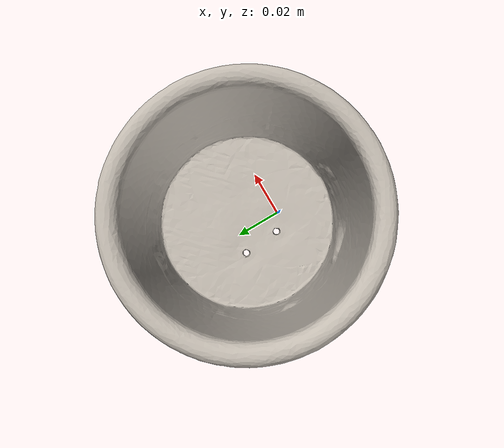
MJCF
<mujoco model="cups_h">
  <compiler angle="radian" meshdir="assets" texturedir="assets"/>
    <default>
        <default class="ycb_col">
            <geom contype="1" conaffinity="1" group="3" rgba=".4 .5 .6 1"/>
        </default>
        <default class="ycb_viz">
            <geom contype="0" conaffinity="0" type="mesh" mass="0"/>
        </default>
    </default>
  <asset>
    <texture type="2d" name="h_cups_tex" file="texture_map.png"/>
    <material name="h_cups_mat" texture="h_cups_tex" specular="0.5" shininess="0.5"/>
    <mesh file="textured.obj" name="h_cups"/>
    <mesh file="textured_collision_0.obj" name="h_cups_collision_0"/>
    <mesh file="textured_collision_1.obj" name="h_cups_collision_1"/>
    <mesh file="textured_collision_2.obj" name="h_cups_collision_2"/>
    <mesh file="textured_collision_3.obj" name="h_cups_collision_3"/>
    <mesh file="textured_collision_4.obj" name="h_cups_collision_4"/>
    <mesh file="textured_collision_5.obj" name="h_cups_collision_5"/>
    <mesh file="textured_collision_6.obj" name="h_cups_collision_6"/>
    <mesh file="textured_collision_7.obj" name="h_cups_collision_7"/>
    <mesh file="textured_collision_8.obj" name="h_cups_collision_8"/>
    <mesh file="textured_collision_9.obj" name="h_cups_collision_9"/>
    <mesh file="textured_collision_10.obj" name="h_cups_collision_10"/>
    <mesh file="textured_collision_11.obj" name="h_cups_collision_11"/>
    <mesh file="textured_collision_12.obj" name="h_cups_collision_12"/>
    <mesh file="textured_collision_13.obj" name="h_cups_collision_13"/>
    <mesh file="textured_collision_14.obj" name="h_cups_collision_14"/>
    <mesh file="textured_collision_15.obj" name="h_cups_collision_15"/>
    <mesh file="textured_collision_16.obj" name="h_cups_collision_16"/>
    <mesh file="textured_collision_17.obj" name="h_cups_collision_17"/>
    <mesh file="textured_collision_18.obj" name="h_cups_collision_18"/>
    <mesh file="textured_collision_19.obj" name="h_cups_collision_19"/>
    <mesh file="textured_collision_20.obj" name="h_cups_collision_20"/>
    <mesh file="textured_collision_21.obj" name="h_cups_collision_21"/>
    <mesh file="textured_collision_22.obj" name="h_cups_collision_22"/>
    <mesh file="textured_collision_23.obj" name="h_cups_collision_23"/>
    <mesh file="textured_collision_24.obj" name="h_cups_collision_24"/>
    <mesh file="textured_collision_25.obj" name="h_cups_collision_25"/>
    <mesh file="textured_collision_26.obj" name="h_cups_collision_26"/>
    <mesh file="textured_collision_27.obj" name="h_cups_collision_27"/>
    <mesh file="textured_collision_28.obj" name="h_cups_collision_28"/>
    <mesh file="textured_collision_29.obj" name="h_cups_collision_29"/>
    <mesh file="textured_collision_30.obj" name="h_cups_collision_30"/>
    <mesh file="textured_collision_31.obj" name="h_cups_collision_31"/>
    <mesh file="textured_collision_32.obj" name="h_cups_collision_32"/>
    <mesh file="textured_collision_33.obj" name="h_cups_collision_33"/>
    <mesh file="textured_collision_34.obj" name="h_cups_collision_34"/>
    <mesh file="textured_collision_35.obj" name="h_cups_collision_35"/>
    <mesh file="textured_collision_36.obj" name="h_cups_collision_36"/>
    <mesh file="textured_collision_37.obj" name="h_cups_collision_37"/>
    <mesh file="textured_collision_38.obj" name="h_cups_collision_38"/>
    <mesh file="textured_collision_39.obj" name="h_cups_collision_39"/>
    <mesh file="textured_collision_40.obj" name="h_cups_collision_40"/>
    <mesh file="textured_collision_41.obj" name="h_cups_collision_41"/>
    <mesh file="textured_collision_42.obj" name="h_cups_collision_42"/>
  </asset>
  <worldbody>
      <geom material="h_cups_mat" mesh="h_cups" class="ycb_viz"/>
      <geom mesh="h_cups_collision_0" class="ycb_col" conaffinity="1" condim="4" friction="0.1 0.1 0.1" mass="0.00028280414980787677" rgba="1 1 1 1" solimp="0.99 0.99 0.01" solref=".001 0.1" type="mesh" group="3"/>
      <geom mesh="h_cups_collision_1" class="ycb_col" conaffinity="1" condim="4" friction="0.1 0.1 0.1" mass="0.001256637137418847" rgba="1 1 1 1" solimp="0.99 0.99 0.01" solref=".001 0.1" type="mesh" group="3"/>
      <geom mesh="h_cups_collision_2" class="ycb_col" conaffinity="1" condim="4" friction="0.1 0.1 0.1" mass="0.0015878626229933687" rgba="1 1 1 1" solimp="0.99 0.99 0.01" solref=".001 0.1" type="mesh" group="3"/>
      <geom mesh="h_cups_collision_3" class="ycb_col" conaffinity="1" condim="4" friction="0.1 0.1 0.1" mass="0.0005200632786200273" rgba="1 1 1 1" solimp="0.99 0.99 0.01" solref=".001 0.1" type="mesh" group="3"/>
      <geom mesh="h_cups_collision_4" class="ycb_col" conaffinity="1" condim="4" friction="0.1 0.1 0.1" mass="0.00040652916146694776" rgba="1 1 1 1" solimp="0.99 0.99 0.01" solref=".001 0.1" type="mesh" group="3"/>
      <geom mesh="h_cups_collision_5" class="ycb_col" conaffinity="1" condim="4" friction="0.1 0.1 0.1" mass="0.0005292658021794999" rgba="1 1 1 1" solimp="0.99 0.99 0.01" solref=".001 0.1" type="mesh" group="3"/>
      <geom mesh="h_cups_collision_6" class="ycb_col" conaffinity="1" condim="4" friction="0.1 0.1 0.1" mass="0.00035031770034384254" rgba="1 1 1 1" solimp="0.99 0.99 0.01" solref=".001 0.1" type="mesh" group="3"/>
      <geom mesh="h_cups_collision_7" class="ycb_col" conaffinity="1" condim="4" friction="0.1 0.1 0.1" mass="0.00014251351980353624" rgba="1 1 1 1" solimp="0.99 0.99 0.01" solref=".001 0.1" type="mesh" group="3"/>
      <geom mesh="h_cups_collision_8" class="ycb_col" conaffinity="1" condim="4" friction="0.1 0.1 0.1" mass="0.0001508180642788027" rgba="1 1 1 1" solimp="0.99 0.99 0.01" solref=".001 0.1" type="mesh" group="3"/>
      <geom mesh="h_cups_collision_9" class="ycb_col" conaffinity="1" condim="4" friction="0.1 0.1 0.1" mass="0.001194273559746922" rgba="1 1 1 1" solimp="0.99 0.99 0.01" solref=".001 0.1" type="mesh" group="3"/>
      <geom mesh="h_cups_collision_10" class="ycb_col" conaffinity="1" condim="4" friction="0.1 0.1 0.1" mass="0.0006473149555420929" rgba="1 1 1 1" solimp="0.99 0.99 0.01" solref=".001 0.1" type="mesh" group="3"/>
      <geom mesh="h_cups_collision_11" class="ycb_col" conaffinity="1" condim="4" friction="0.1 0.1 0.1" mass="0.0014315674051034932" rgba="1 1 1 1" solimp="0.99 0.99 0.01" solref=".001 0.1" type="mesh" group="3"/>
      <geom mesh="h_cups_collision_12" class="ycb_col" conaffinity="1" condim="4" friction="0.1 0.1 0.1" mass="0.0013033914960154476" rgba="1 1 1 1" solimp="0.99 0.99 0.01" solref=".001 0.1" type="mesh" group="3"/>
      <geom mesh="h_cups_collision_13" class="ycb_col" conaffinity="1" condim="4" friction="0.1 0.1 0.1" mass="0.000952547767445517" rgba="1 1 1 1" solimp="0.99 0.99 0.01" solref=".001 0.1" type="mesh" group="3"/>
      <geom mesh="h_cups_collision_14" class="ycb_col" conaffinity="1" condim="4" friction="0.1 0.1 0.1" mass="0.0004428585702471481" rgba="1 1 1 1" solimp="0.99 0.99 0.01" solref=".001 0.1" type="mesh" group="3"/>
      <geom mesh="h_cups_collision_15" class="ycb_col" conaffinity="1" condim="4" friction="0.1 0.1 0.1" mass="0.00016098441952162683" rgba="1 1 1 1" solimp="0.99 0.99 0.01" solref=".001 0.1" type="mesh" group="3"/>
      <geom mesh="h_cups_collision_16" class="ycb_col" conaffinity="1" condim="4" friction="0.1 0.1 0.1" mass="0.00017438439495229448" rgba="1 1 1 1" solimp="0.99 0.99 0.01" solref=".001 0.1" type="mesh" group="3"/>
      <geom mesh="h_cups_collision_17" class="ycb_col" conaffinity="1" condim="4" friction="0.1 0.1 0.1" mass="0.001013042683258586" rgba="1 1 1 1" solimp="0.99 0.99 0.01" solref=".001 0.1" type="mesh" group="3"/>
      <geom mesh="h_cups_collision_18" class="ycb_col" conaffinity="1" condim="4" friction="0.1 0.1 0.1" mass="0.0011445255138580219" rgba="1 1 1 1" solimp="0.99 0.99 0.01" solref=".001 0.1" type="mesh" group="3"/>
      <geom mesh="h_cups_collision_19" class="ycb_col" conaffinity="1" condim="4" friction="0.1 0.1 0.1" mass="0.0012008072319873453" rgba="1 1 1 1" solimp="0.99 0.99 0.01" solref=".001 0.1" type="mesh" group="3"/>
      <geom mesh="h_cups_collision_20" class="ycb_col" conaffinity="1" condim="4" friction="0.1 0.1 0.1" mass="0.00125005756312589" rgba="1 1 1 1" solimp="0.99 0.99 0.01" solref=".001 0.1" type="mesh" group="3"/>
      <geom mesh="h_cups_collision_21" class="ycb_col" conaffinity="1" condim="4" friction="0.1 0.1 0.1" mass="0.0002618029117409351" rgba="1 1 1 1" solimp="0.99 0.99 0.01" solref=".001 0.1" type="mesh" group="3"/>
      <geom mesh="h_cups_collision_22" class="ycb_col" conaffinity="1" condim="4" friction="0.1 0.1 0.1" mass="0.00027852686378564704" rgba="1 1 1 1" solimp="0.99 0.99 0.01" solref=".001 0.1" type="mesh" group="3"/>
      <geom mesh="h_cups_collision_23" class="ycb_col" conaffinity="1" condim="4" friction="0.1 0.1 0.1" mass="0.00039764844922289555" rgba="1 1 1 1" solimp="0.99 0.99 0.01" solref=".001 0.1" type="mesh" group="3"/>
      <geom mesh="h_cups_collision_24" class="ycb_col" conaffinity="1" condim="4" friction="0.1 0.1 0.1" mass="0.0012688922462091318" rgba="1 1 1 1" solimp="0.99 0.99 0.01" solref=".001 0.1" type="mesh" group="3"/>
      <geom mesh="h_cups_collision_25" class="ycb_col" conaffinity="1" condim="4" friction="0.1 0.1 0.1" mass="0.0012247821748068697" rgba="1 1 1 1" solimp="0.99 0.99 0.01" solref=".001 0.1" type="mesh" group="3"/>
      <geom mesh="h_cups_collision_26" class="ycb_col" conaffinity="1" condim="4" friction="0.1 0.1 0.1" mass="0.0016094419426833915" rgba="1 1 1 1" solimp="0.99 0.99 0.01" solref=".001 0.1" type="mesh" group="3"/>
      <geom mesh="h_cups_collision_27" class="ycb_col" conaffinity="1" condim="4" friction="0.1 0.1 0.1" mass="0.0012183233928398836" rgba="1 1 1 1" solimp="0.99 0.99 0.01" solref=".001 0.1" type="mesh" group="3"/>
      <geom mesh="h_cups_collision_28" class="ycb_col" conaffinity="1" condim="4" friction="0.1 0.1 0.1" mass="0.00022728617086448263" rgba="1 1 1 1" solimp="0.99 0.99 0.01" solref=".001 0.1" type="mesh" group="3"/>
      <geom mesh="h_cups_collision_29" class="ycb_col" conaffinity="1" condim="4" friction="0.1 0.1 0.1" mass="0.00020869322173122876" rgba="1 1 1 1" solimp="0.99 0.99 0.01" solref=".001 0.1" type="mesh" group="3"/>
      <geom mesh="h_cups_collision_30" class="ycb_col" conaffinity="1" condim="4" friction="0.1 0.1 0.1" mass="0.0012174961722372943" rgba="1 1 1 1" solimp="0.99 0.99 0.01" solref=".001 0.1" type="mesh" group="3"/>
      <geom mesh="h_cups_collision_31" class="ycb_col" conaffinity="1" condim="4" friction="0.1 0.1 0.1" mass="0.0012291201617513892" rgba="1 1 1 1" solimp="0.99 0.99 0.01" solref=".001 0.1" type="mesh" group="3"/>
      <geom mesh="h_cups_collision_32" class="ycb_col" conaffinity="1" condim="4" friction="0.1 0.1 0.1" mass="0.0011424804972887225" rgba="1 1 1 1" solimp="0.99 0.99 0.01" solref=".001 0.1" type="mesh" group="3"/>
      <geom mesh="h_cups_collision_33" class="ycb_col" conaffinity="1" condim="4" friction="0.1 0.1 0.1" mass="0.0014208331775228016" rgba="1 1 1 1" solimp="0.99 0.99 0.01" solref=".001 0.1" type="mesh" group="3"/>
      <geom mesh="h_cups_collision_34" class="ycb_col" conaffinity="1" condim="4" friction="0.1 0.1 0.1" mass="0.0002526773580256746" rgba="1 1 1 1" solimp="0.99 0.99 0.01" solref=".001 0.1" type="mesh" group="3"/>
      <geom mesh="h_cups_collision_35" class="ycb_col" conaffinity="1" condim="4" friction="0.1 0.1 0.1" mass="0.00043978117035267693" rgba="1 1 1 1" solimp="0.99 0.99 0.01" solref=".001 0.1" type="mesh" group="3"/>
      <geom mesh="h_cups_collision_36" class="ycb_col" conaffinity="1" condim="4" friction="0.1 0.1 0.1" mass="0.00016566531721931574" rgba="1 1 1 1" solimp="0.99 0.99 0.01" solref=".001 0.1" type="mesh" group="3"/>
      <geom mesh="h_cups_collision_37" class="ycb_col" conaffinity="1" condim="4" friction="0.1 0.1 0.1" mass="0.0004332802857682865" rgba="1 1 1 1" solimp="0.99 0.99 0.01" solref=".001 0.1" type="mesh" group="3"/>
      <geom mesh="h_cups_collision_38" class="ycb_col" conaffinity="1" condim="4" friction="0.1 0.1 0.1" mass="0.00018242878420116372" rgba="1 1 1 1" solimp="0.99 0.99 0.01" solref=".001 0.1" type="mesh" group="3"/>
      <geom mesh="h_cups_collision_39" class="ycb_col" conaffinity="1" condim="4" friction="0.1 0.1 0.1" mass="0.0004166394158126" rgba="1 1 1 1" solimp="0.99 0.99 0.01" solref=".001 0.1" type="mesh" group="3"/>
      <geom mesh="h_cups_collision_40" class="ycb_col" conaffinity="1" condim="4" friction="0.1 0.1 0.1" mass="0.0001471611688781246" rgba="1 1 1 1" solimp="0.99 0.99 0.01" solref=".001 0.1" type="mesh" group="3"/>
      <geom mesh="h_cups_collision_41" class="ycb_col" conaffinity="1" condim="4" friction="0.1 0.1 0.1" mass="0.0003327308736152275" rgba="1 1 1 1" solimp="0.99 0.99 0.01" solref=".001 0.1" type="mesh" group="3"/>
      <geom mesh="h_cups_collision_42" class="ycb_col" conaffinity="1" condim="4" friction="0.1 0.1 0.1" mass="0.0007817412457251248" rgba="1 1 1 1" solimp="0.99 0.99 0.01" solref=".001 0.1" type="mesh" group="3"/>
  </worldbody>
</mujoco>
